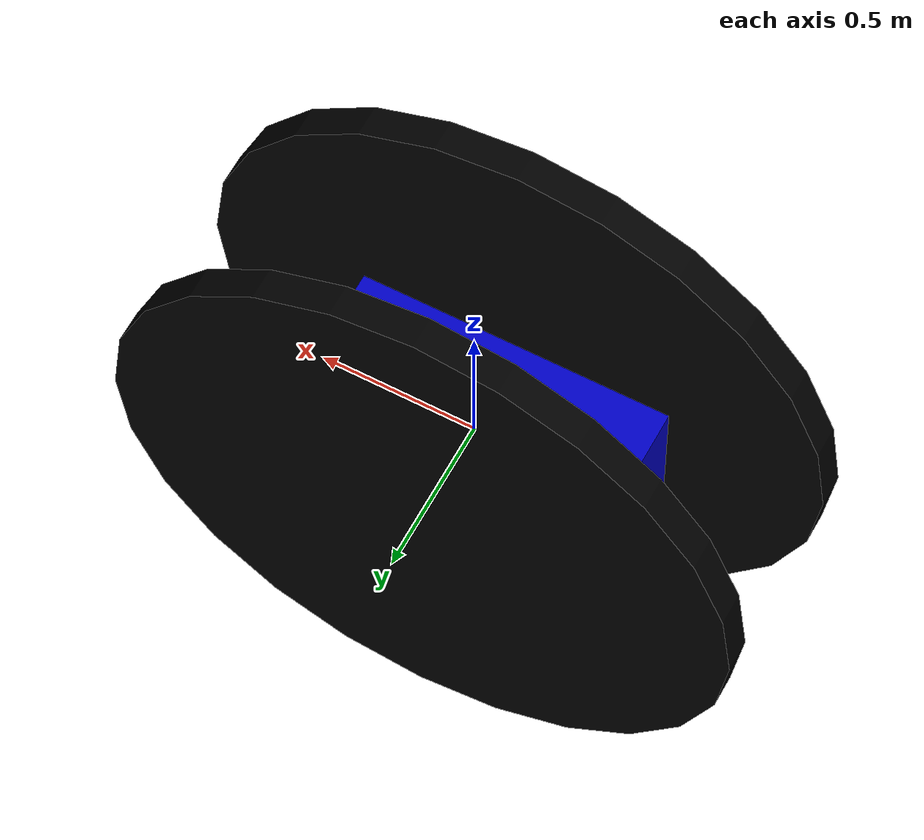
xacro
<?xml version="1.0"?>
<robot xmlns:xacro="http://www.ros.org/wiki/xacro" name="diffdrive">
  <xacro:property name="width" value="0.5" />
  <xacro:property name="length" value="1.0" />
  <xacro:property name="extra" value="0.1" />
  <xacro:property name="wheel_radius" value="1.0" />
  <xacro:property name="wheel_width" value=".1" />
  <xacro:include filename="$(find wheeled_robot_sim)/diffdrive.gazebo" />

  <link name="base_link">
    <visual>
      <origin xyz="0.0 0.0 ${-wheel_radius/2+extra}"/>
      <geometry>
        <box size="${length} ${width} ${wheel_radius}"/>
      </geometry>
      <material name="blue">
        <color rgba="0 0 .8 1"/>
      </material>
    </visual>
    <collision>
      <origin xyz="0.0 0.0 ${-wheel_radius/2+extra}"/>
      <geometry>
        <box size="${length} ${width} ${wheel_radius}"/>
      </geometry>
    </collision>
    <inertial>
      <mass value="10"/>
      <inertia ixx="1.0" ixy="0.0" ixz="0.0" iyy="1.0" iyz="0.0" izz="1.0"/>
    </inertial>
  </link>

  <xacro:macro name="wheel" params="prefix sign">
  <link name="${prefix}_wheel">
    <visual>
      <geometry>
        <cylinder length="${wheel_width}" radius="${wheel_radius}"/>
      </geometry>
      <material name="black">
        <color rgba="0 0 0 1"/>
      </material>
    </visual>
    <collision>
      <geometry>
        <cylinder length="${wheel_width}" radius="${wheel_radius}"/>
      </geometry>
    </collision>
    <inertial>
      <mass value="5"/>
      <inertia ixx="1.0" ixy="0.0" ixz="0.0" iyy="1.0" iyz="0.0" izz="1.0"/>
    </inertial>
  </link>

  <joint name="${prefix}_wheel_joint" type="continuous">
    <axis xyz="0 0 -1"/>
    <parent link="base_link"/>
    <child link="${prefix}_wheel"/>
    <origin rpy="1.57075 0 0" xyz="0 ${sign*(width+wheel_width)/2} 0.0"/>
    <limit effort="100" velocity="100"/>
    <joint_properties damping="0.0" friction="0.0"/>
  </joint>

  <transmission name="${prefix}_tran1">
    <type>transmission_interface/SimpleTransmission</type>
    <joint name="${prefix}_wheel_joint">
      <hardwareInterface>VelocityJointInterface</hardwareInterface>
    </joint>
    <actuator name="${prefix}_motor">
      <hardwareInterface>VelocityJointInterface</hardwareInterface>
      <mechanicalReduction>1</mechanicalReduction>
    </actuator>
  </transmission>

  </xacro:macro>

  <xacro:wheel prefix="left" sign="1" />
  <xacro:wheel prefix="right" sign="-1" />

  <xacro:macro name="support" params="prefix sign">
  <link name="${prefix}_support">
    <visual>
      <geometry>
        <sphere radius="${extra}"/>
      </geometry>
      <material name="black">
        <color rgba="0 0 0 1"/>
      </material>
    </visual>
    <collision>
      <geometry>
        <sphere radius="${extra}"/>
      </geometry>
    </collision>
    <inertial>
      <mass value="1"/>
      <inertia ixx="1.0" ixy="0.0" ixz="0.0" iyy="1.0" iyz="0.0" izz="1.0"/>
    </inertial>
  </link>

  <joint name="${prefix}_support_joint" type="fixed">
    <parent link="base_link"/>
    <child link="${prefix}_support"/>
    <origin xyz="${sign*length/2*.8} 0.0 ${-wheel_radius+extra}"/>
    <limit effort="100" velocity="100"/>
    <joint_properties damping="0.0" friction="0.0"/>
  </joint>

  </xacro:macro>
  <xacro:support prefix="front" sign="1" />
  <xacro:support prefix="back" sign="-1" />

  <gazebo>
    <plugin name="ground_truth" filename="libgazebo_ros_p3d.so">
      <frameName>map</frameName>
      <bodyName>base_link</bodyName>
      <topicName>odom</topicName>
      <updateRate>30.0</updateRate>
    </plugin>
  </gazebo>

</robot>
